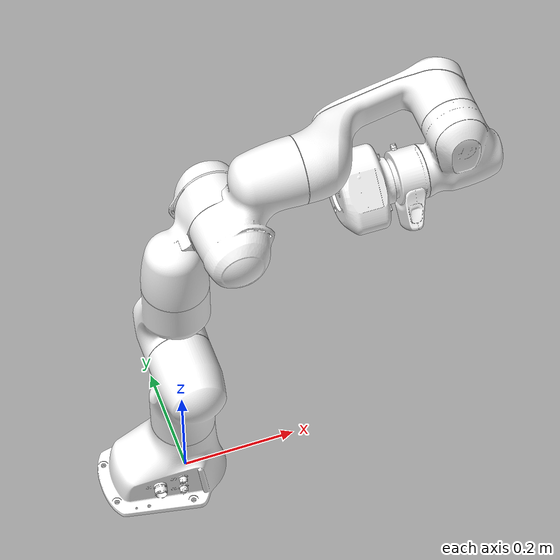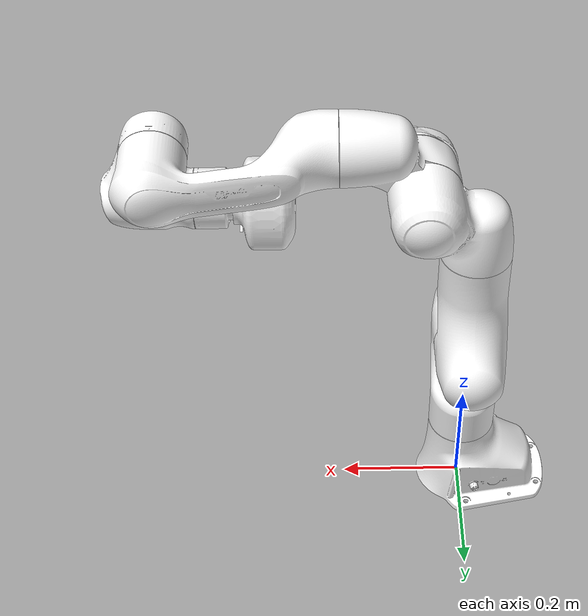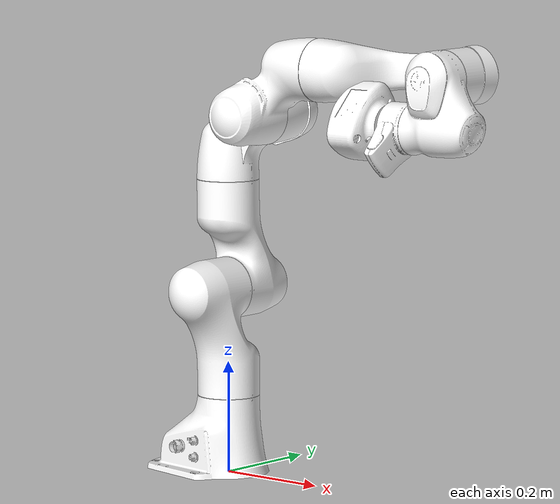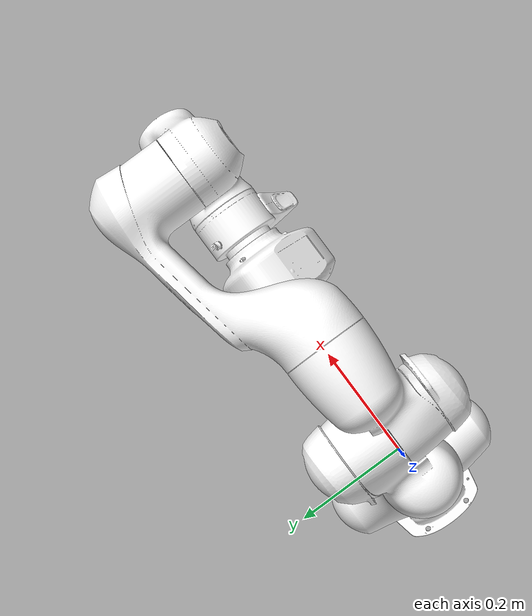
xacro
<?xml version="1.0" encoding="utf-8"?>
<robot xmlns:xacro="http://www.ros.org/wiki/xacro" name="panda_pump">

  <xacro:arg name="gazebo" default="true"/>

  <xacro:include filename="@CMAKE_BINARY_DIR@/xacro/main.xacro">
    <xacro:arg name="gazebo" value="${gazebo}"/>
  </xacro:include>
  <xacro:include filename="@CMAKE_BINARY_DIR@/xacro/pandaA.xacro">
    <xacro:arg name="gazebo" value="${gazebo}"/>
  </xacro:include>
  <xacro:include filename="@CMAKE_BINARY_DIR@/xacro/pump.xacro"/>

  <xacro:main connected_to='world'/>
  <xacro:pandaA xyz="0 0 0" connected_to='main_link' safety_distance="0.03"/>
  <xacro:pump ns="panda" rpy="0 0 ${-pi/4}" connected_to="panda_linkA8"/>
</robot>

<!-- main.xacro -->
<robot xmlns:xacro="http://www.ros.org/wiki/xacro" name="panda_main_part">
  <xacro:macro name="main" params="arm_id:='main' package_name:='franka_gazebo' connected_to:='' xyz:='0 0 0' rpy:='0 0 0'">
    <xacro:unless value="${not connected_to}">
      <link name="${connected_to}"/>
      <joint name="${arm_id}_joint_${connected_to}" type="fixed">
        <parent link="${connected_to}"/>
        <child link="${arm_id}_link"/>
        <origin rpy="${rpy}" xyz="${xyz}"/>
      </joint>
    </xacro:unless>

    <xacro:arg name="gazebo" default="true"/>
    <xacro:if value="$(arg gazebo)">
      <!-- Gazebo Tags -->
      <xacro:include filename="main.gazebo.xacro"/>
    </xacro:if>

    <link name="${arm_id}_link">
    </link>

  </xacro:macro>
</robot>

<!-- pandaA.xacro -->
<robot xmlns:xacro="http://www.ros.org/wiki/xacro" name="panda_manipulatorA_part">
  <xacro:macro name="pandaA" params="arm_id:='panda' package_name:='franka_gazebo' connected_to:='' xyz:='0 0 0' rpy:='0 0 0'">
    <xacro:unless value="${not connected_to}">
      <joint name="${arm_id}_jointA_${connected_to}" type="fixed">
        <parent link="${connected_to}"/>
        <child link="${arm_id}_linkA0"/>
        <origin rpy="${rpy}" xyz="${xyz}"/>
      </joint>
    </xacro:unless>

    <xacro:arg name="gazebo" default="true"/>
    <xacro:if value="$(arg gazebo)">
      <!-- Gazebo Tags -->
      <xacro:include filename="pandaA.gazebo.xacro"/>
    </xacro:if>

    <link name="${arm_id}_linkA0">
      <inertial>
        <mass value="2.92" />
        <origin xyz="-0.025566 -2.88e-05 0.057332" rpy="0 0 0" />
        <inertia ixx="0.00782229414331" ixy="-1.56191622996e-05" ixz="-0.00126005738123" iyy="0.0109027971813" iyz="1.08233858202e-05" izz="0.0102355503949" />
      </inertial>
      <visual>
        <origin xyz="0 0 0" rpy="0 0 0"/>
        <geometry>
          <mesh filename="package://${package_name}/meshes/visual/link0.dae"/>
        </geometry>
        <material name="">
          <color rgba="1 1 1 1"/>
        </material>
      </visual>
      <collision>
        <origin xyz="0 0 0" rpy="0 0 0"/>
        <geometry>
          <mesh filename="package://${package_name}/meshes/collision/link0.stl"/>
        </geometry>
      </collision>
    </link>

    <link name="${arm_id}_linkA1">
      <inertial>
        <mass value="2.74" />
        <origin xyz="0 -0.0324958 -0.0675818" rpy="0 0 0" />
        <inertia ixx="0.0180416958283" ixy="0.0" ixz="0.0" iyy="0.0159136071891" iyz="0.0046758424612" izz="0.00620690827127" />
      </inertial>
      <visual>
        <origin xyz="0 0 0" rpy="0 0 0"/>
        <geometry>
          <mesh filename="package://${package_name}/meshes/visual/link1.dae"/>
        </geometry>
        <material name="">
          <color rgba="1 1 1 1"/>
        </material>
      </visual>
      <collision>
        <origin xyz="0 0 0" rpy="0 0 0"/>
        <geometry>
          <mesh filename="package://${package_name}/meshes/collision/link1.stl"/>
        </geometry>
      </collision>
    </link>

    <joint name="${arm_id}_jointA1" type="revolute">
      <safety_controller k_position="100.0" k_velocity="40.0" soft_lower_limit="-2.8973" soft_upper_limit="2.8973"/>
      <origin rpy="0 0 0" xyz="0 0 0.333"/>
      <parent link="${arm_id}_linkA0"/>
      <child link="${arm_id}_linkA1"/>
      <axis xyz="0 0 1"/>
      <limit effort="87" lower="-2.8973" upper="2.8973" velocity="2.1750"/>
    </joint>

    <link name="${arm_id}_linkA2">
      <inertial>
        <mass value="2.74" />
        <origin xyz="0 -0.06861 0.0322285" rpy="0 0 0" />
        <inertia ixx="0.0182856182281" ixy="0.0" ixz="0.0" iyy="0.00621358421175" iyz="-0.00472844221905" izz="0.0161514346309" />
      </inertial>
      <visual>
        <origin xyz="0 0 0" rpy="0 0 0"/>
        <geometry>
          <mesh filename="package://${package_name}/meshes/visual/link2.dae"/>
        </geometry>
        <material name="">
          <color rgba="1 1 1 1"/>
        </material>
      </visual>
      <collision>
        <origin xyz="0 0 0" rpy="0 0 0"/>
        <geometry>
          <mesh filename="package://${package_name}/meshes/collision/link2.stl"/>
        </geometry>
      </collision>
    </link>

    <joint name="${arm_id}_jointA2" type="revolute">
      <safety_controller k_position="100.0" k_velocity="40.0" soft_lower_limit="-1.7628" soft_upper_limit="1.7628"/>
      <origin rpy="${-pi/2} 0 0" xyz="0 0 0"/>
      <parent link="${arm_id}_linkA1"/>
      <child link="${arm_id}_linkA2"/>
      <axis xyz="0 0 1"/>
      <limit effort="87" lower="-1.7628" upper="1.7628" velocity="2.1750"/>
    </joint>

    <link name="${arm_id}_linkA3">
      <inertial>
        <mass value="2.38" />
        <origin xyz="0.0469893 0.0316374 -0.031704" rpy="0 0 0" />
        <inertia ixx="0.00771376630908" ixy="-0.00248490625138" ixz="-0.00332147581033" iyy="0.00989108008727" iyz="-0.00217796151484" izz="0.00811723558464" />
      </inertial>
      <visual>
        <origin xyz="0 0 0" rpy="0 0 0"/>
        <geometry>
          <mesh filename="package://${package_name}/meshes/visual/link3.dae"/>
        </geometry>
        <material name="">
          <color rgba="1 1 1 1"/>
        </material>
      </visual>
      <collision>
        <origin xyz="0 0 0" rpy="0 0 0"/>
        <geometry>
          <mesh filename="package://${package_name}/meshes/collision/link3.stl"/>
        </geometry>
      </collision>
    </link>

    <joint name="${arm_id}_jointA3" type="revolute">
      <safety_controller k_position="100.0" k_velocity="40.0" soft_lower_limit="-2.8973" soft_upper_limit="2.8973"/>
      <origin rpy="${pi/2} 0 0" xyz="0 -0.316 0"/>
      <parent link="${arm_id}_linkA2"/>
      <child link="${arm_id}_linkA3"/>
      <axis xyz="0 0 1"/>
      <limit effort="87" lower="-2.8973" upper="2.8973" velocity="2.1750"/>
    </joint>

    <link name="${arm_id}_linkA4">
      <inertial>
        <mass value="2.38" />
        <origin xyz="-0.0360446 0.0336853 0.031882" rpy="0 0 0" />
        <inertia ixx="0.00799663881132" ixy="0.00347095570217" ixz="-0.00241222942995" iyy="0.00825390705278" iyz="0.00235774044121" izz="0.0102515004345" />
      </inertial>
      <visual>
        <origin xyz="0 0 0" rpy="0 0 0"/>
        <geometry>
          <mesh filename="package://${package_name}/meshes/visual/link4.dae"/>
        </geometry>
        <material name="">
          <color rgba="1 1 1 1"/>
        </material>
      </visual>
      <collision>
        <origin xyz="0 0 0" rpy="0 0 0"/>
        <geometry>
          <mesh filename="package://${package_name}/meshes/collision/link4.stl"/>
        </geometry>
      </collision>
    </link>

    <joint name="${arm_id}_jointA4" type="revolute">
      <safety_controller k_position="100.0" k_velocity="40.0" soft_lower_limit="-3.0718" soft_upper_limit="-0.0698"/>
      <origin rpy="${pi/2} 0 0" xyz="0.0825 0 0"/>
      <parent link="${arm_id}_linkA3"/>
      <child link="${arm_id}_linkA4"/>
      <axis xyz="0 0 1"/>
      <limit effort="87" lower="-3.0718" upper="-0.0698" velocity="2.1750"/>
    </joint>

    <link name="${arm_id}_linkA5">
      <inertial>
        <mass value="2.74" />
        <origin xyz="0 0.0610427 -0.104176" rpy="0 0 0" />
        <inertia ixx="0.030371374513" ixy="6.50283587108e-07" ixz="-1.05129179916e-05" iyy="0.0288752887402" iyz="-0.00775653445787" izz="0.00444134056164" />
      </inertial>
      <visual>
        <origin xyz="0 0 0" rpy="0 0 0"/>
        <geometry>
          <mesh filename="package://${package_name}/meshes/visual/link5.dae"/>
        </geometry>
        <material name="">
          <color rgba="1 1 1 1"/>
        </material>
      </visual>
      <collision>
        <origin xyz="0 0 0" rpy="0 0 0"/>
        <geometry>
          <mesh filename="package://${package_name}/meshes/collision/link5.stl"/>
        </geometry>
      </collision>
    </link>

    <joint name="${arm_id}_jointA5" type="revolute">
      <safety_controller k_position="100.0" k_velocity="40.0" soft_lower_limit="-2.8973" soft_upper_limit="2.8973"/>
      <origin rpy="${-pi/2} 0 0" xyz="-0.0825 0.384 0"/>
      <parent link="${arm_id}_linkA4"/>
      <child link="${arm_id}_linkA5"/>
      <axis xyz="0 0 1"/>
      <limit effort="12" lower="-2.8973" upper="2.8973" velocity="2.6100"/>
    </joint>

    <link name="${arm_id}_linkA6">
      <inertial>
        <mass value="1.55" />
        <origin xyz="0.0510509 0.009108 0.0106343" rpy="0 0 0" />
        <inertia ixx="0.00303336450376" ixy="-0.000437276865508" ixz="0.000629257294877" iyy="0.00404479911567" iyz="0.000130472021025" izz="0.00558234286039" />
      </inertial>
      <visual>
        <origin xyz="0 0 0" rpy="0 0 0"/>
        <geometry>
          <mesh filename="package://${package_name}/meshes/visual/link6.dae"/>
        </geometry>
        <material name="">
          <color rgba="1 1 1 1"/>
        </material>
      </visual>
      <collision>
        <origin xyz="0 0 0" rpy="0 0 0"/>
        <geometry>
          <mesh filename="package://${package_name}/meshes/collision/link6.stl"/>
        </geometry>
      </collision>
    </link>

    <joint name="${arm_id}_jointA6" type="revolute">
      <safety_controller k_position="100.0" k_velocity="40.0" soft_lower_limit="-0.0175" soft_upper_limit="3.7525"/>
      <origin rpy="${pi/2} 0 0" xyz="0 0 0"/>
      <parent link="${arm_id}_linkA5"/>
      <child link="${arm_id}_linkA6"/>
      <axis xyz="0 0 1"/>
      <limit effort="12" lower="-0.0175" upper="3.7525" velocity="2.6100"/>
    </joint>

    <link name="${arm_id}_linkA7">
      <inertial>
        <mass value="0.54" />
        <origin xyz="0.0109695 0.0107965 0.0650411" rpy="0 0 0" />
        <inertia ixx="0.000888868887021" ixy="-0.00012239074652" ixz="3.98699829666e-05" iyy="0.000888001373233" iyz="-9.33825115206e-05" izz="0.0007176834609" />
      </inertial>
      <visual>
        <origin xyz="0 0 0" rpy="0 0 0"/>
        <geometry>
          <mesh filename="package://${package_name}/meshes/visual/link7.dae"/>
        </geometry>
        <material name="">
          <color rgba="1 1 1 1"/>
        </material>
      </visual>
      <collision>
        <origin xyz="0 0 0" rpy="0 0 0"/>
        <geometry>
          <mesh filename="package://${package_name}/meshes/collision/link7.stl"/>
        </geometry>
      </collision>
    </link>

    <joint name="${arm_id}_jointA7" type="revolute">
      <safety_controller k_position="100.0" k_velocity="40.0" soft_lower_limit="-2.8973" soft_upper_limit="2.8973"/>
      <origin rpy="${pi/2} 0 0" xyz="0.088 0 0"/>
      <parent link="${arm_id}_linkA6"/>
      <child link="${arm_id}_linkA7"/>
      <axis xyz="0 0 1"/>
      <limit effort="12" lower="-2.8973" upper="2.8973" velocity="2.6100"/>
    </joint>

    <link name="${arm_id}_linkA8"/>

    <joint name="${arm_id}_jointA8" type="fixed">
      <origin rpy="0 0 0" xyz="0 0 0.107"/>
      <parent link="${arm_id}_linkA7"/>
      <child link="${arm_id}_linkA8"/>
      <axis xyz="0 0 0"/>
    </joint>

  </xacro:macro>
</robot>

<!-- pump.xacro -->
<robot xmlns:xacro="http://www.ros.org/wiki/xacro" name="panda_pump_part">
  <xacro:macro name="pump" params="connected_to:='' ns:='' rpy:='0 0 0' xyz:='0 0 0' ">
    <xacro:unless value="${connected_to == ''}">
      <joint name="${ns}_pump_joint" type="fixed">
        <parent link="${connected_to}"/>
        <child link="${ns}_pump"/>
        <origin xyz="${xyz}" rpy="${rpy}"/>
      </joint>
    </xacro:unless>

    <xacro:arg name="gazebo" default="true"/>
    <xacro:if value="$(arg gazebo)">
      <gazebo reference="${ns}_pump"/>
    </xacro:if>

    <link name="${ns}_pump">
      <inertial>
        <mass value="1.01" />
        <origin xyz="0 0 0.063" rpy="0 0 0" />
        <inertia ixx="0.001" ixy="0.0" ixz="0.0" iyy="0.001" iyz="0.0" izz="0.001" />
      </inertial>
      <visual>
        <origin xyz="${xyz}" rpy="3.14 0 0"/>
        <geometry>
          <mesh filename="file://@MESHES_DESTINATION@/pump.stl" scale="0.001 0.001 0.001"/>
        </geometry>
        <material name="">
          <color rgba="1 1 1 1"/>
        </material>
      </visual>
      <collision>
        <origin xyz="${xyz}" rpy="3.14 0 0"/>
        <geometry>
          <mesh filename="file://@MESHES_DESTINATION@/pump.stl" scale="0.001 0.001 0.001"/>
        </geometry>
      </collision>
<!--  scale="0.001 0.001 0.001" -->
    </link>
  </xacro:macro>
</robot>
